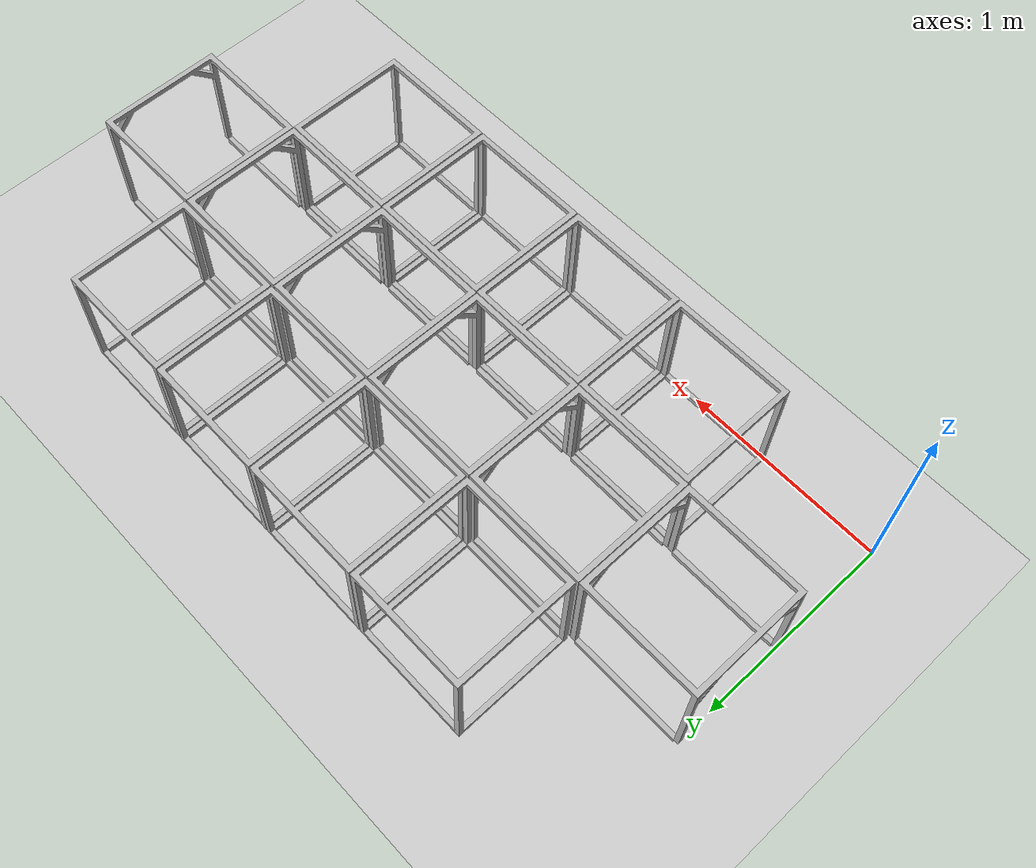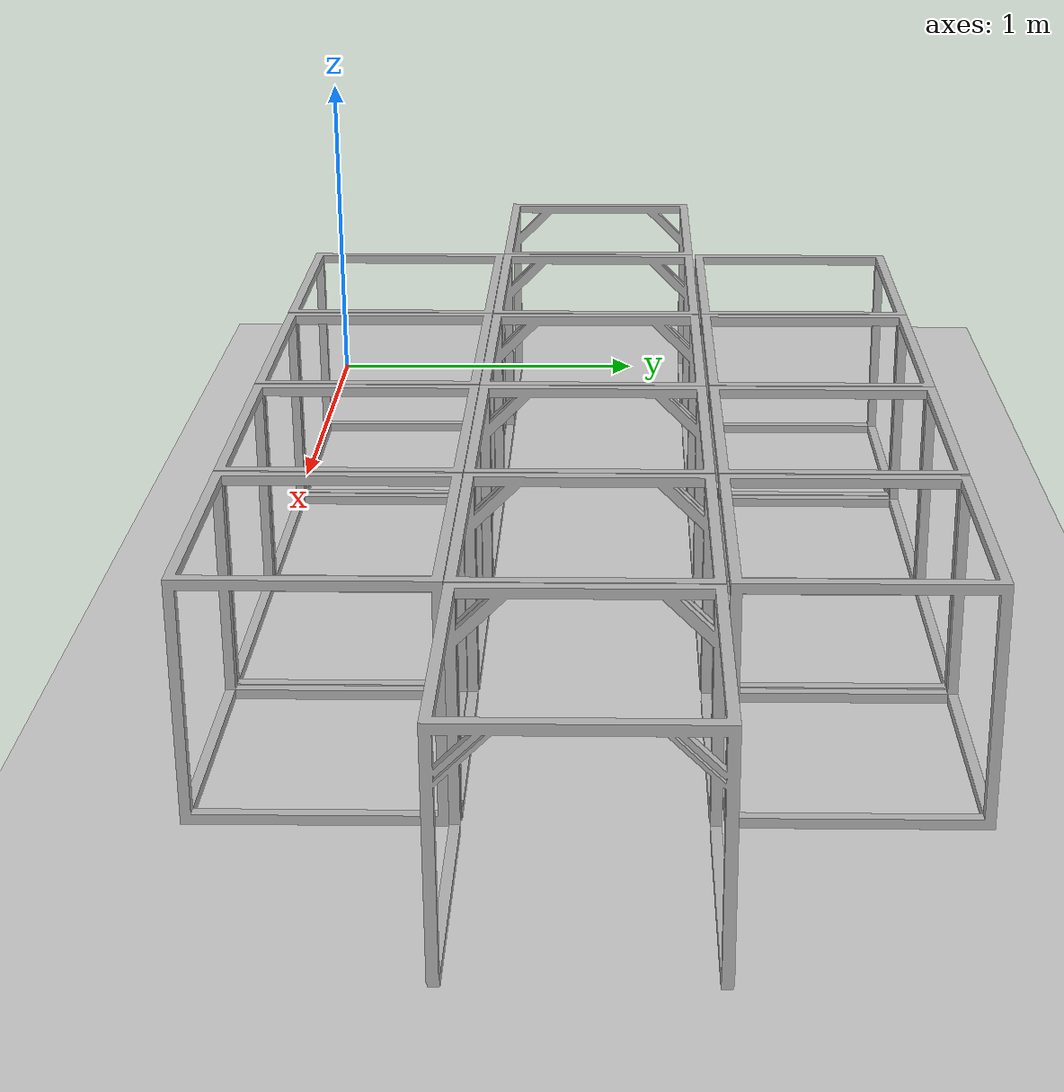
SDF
<sdf version="1.6">
 <world name="default">
  <model name="ground_plane">
   <static>1</static>
   <link name="link">
    <collision name="collision">
     <geometry><plane><normal>0 0 1</normal><size>100 100</size></plane></geometry>
     <surface><friction><ode><mu>100</mu><mu2>50</mu2></ode></friction></surface>
    </collision>
    <visual name="visual">
     <cast_shadows>0</cast_shadows>
     <geometry><plane><normal>0 0 1</normal><size>100 100</size></plane></geometry>
     <material>
      <script><uri>file://media/materials/scripts/gazebo.material</uri><name>Gazebo/Grey</name></script>
     </material>
    </visual>
   </link>
  </model>
  <light name="sun" type="directional">
   <pose>0 0 10 0 -0 0</pose>
   <diffuse>0.8 0.8 0.8 1</diffuse>
   <specular>0.1 0.1 0.1 1</specular>
   <attenuation>
    <range>1000</range>
    <constant>0.9</constant>
    <linear>0.01</linear>
    <quadratic>0.001</quadratic>
   </attenuation>
   <direction>-0.5 0.5 -1</direction>
  </light>
  <model name="cube1">
   <pose>0.6 0 0 0 -0 0</pose>
   <static>1</static>
   <link name="cube1">
    <visual name="visual">
     <geometry><mesh><uri>file://scube.dae</uri><scale>1 1 1</scale></mesh></geometry>
    </visual>
   </link>
  </model>
  <model name="cube2">
   <pose>1.2 0 0 0 -0 0</pose>
   <static>1</static>
   <link name="cube2">
    <visual name="visual">
     <geometry><mesh><uri>file://scube.dae</uri><scale>1 1 1</scale></mesh></geometry>
    </visual>
   </link>
  </model>
  <model name="cube3">
   <pose>1.8 0 0 0 -0 0</pose>
   <static>1</static>
   <link name="cube3">
    <visual name="visual">
     <geometry><mesh><uri>file://scube.dae</uri><scale>1 1 1</scale></mesh></geometry>
    </visual>
   </link>
  </model>
  <model name="cube4">
   <pose>2.4 0 0 0 -0 0</pose>
   <static>1</static>
   <link name="cube4">
    <visual name="visual">
     <geometry><mesh><uri>file://scube.dae</uri><scale>1 1 1</scale></mesh></geometry>
    </visual>
   </link>
  </model>
  <model name="cube5">
   <pose>0.6 1.2 0 0 -0 0</pose>
   <static>1</static>
   <link name="cube5">
    <visual name="visual">
     <geometry><mesh><uri>file://scube.dae</uri><scale>1 1 1</scale></mesh></geometry>
    </visual>
   </link>
  </model>
  <model name="cube6">
   <pose>1.2 1.2 0 0 -0 0</pose>
   <static>1</static>
   <link name="cube6">
    <visual name="visual">
     <geometry><mesh><uri>file://scube.dae</uri><scale>1 1 1</scale></mesh></geometry>
    </visual>
   </link>
  </model>
  <model name="cube7">
   <pose>1.8 1.2 0 0 -0 0</pose>
   <static>1</static>
   <link name="cube7">
    <visual name="visual">
     <geometry><mesh><uri>file://scube.dae</uri><scale>1 1 1</scale></mesh></geometry>
    </visual>
   </link>
  </model>
  <model name="cube8">
   <pose>2.4 1.2 0 0 -0 0</pose>
   <static>1</static>
   <link name="cube8">
    <visual name="visual">
     <geometry><mesh><uri>file://scube.dae</uri><scale>1 1 1</scale></mesh></geometry>
    </visual>
   </link>
  </model>
  <model name="cube9">
   <pose>0 0.6 0 0 -0 0</pose>
   <static>1</static>
   <link name="cube9">
    <visual name="visual">
     <geometry><mesh><uri>file://tcube.dae</uri><scale>1 1 1</scale></mesh></geometry>
    </visual>
   </link>
  </model>
  <model name="cube10">
   <pose>0.6 0.6 0 0 -0 0</pose>
   <static>1</static>
   <link name="cube10">
    <visual name="visual">
     <geometry><mesh><uri>file://tcube.dae</uri><scale>1 1 1</scale></mesh></geometry>
    </visual>
   </link>
  </model>
  <model name="cube11">
   <pose>1.2 0.6 0 0 -0 0</pose>
   <static>1</static>
   <link name="cube11">
    <visual name="visual">
     <geometry><mesh><uri>file://tcube.dae</uri><scale>1 1 1</scale></mesh></geometry>
    </visual>
   </link>
  </model>
  <model name="cube12">
   <pose>1.8 0.6 0 0 -0 0</pose>
   <static>1</static>
   <link name="cube12">
    <visual name="visual">
     <geometry><mesh><uri>file://tcube.dae</uri><scale>1 1 1</scale></mesh></geometry>
    </visual>
   </link>
  </model>
  <model name="cube13">
   <pose>2.4 0.6 0 0 -0 0</pose>
   <static>1</static>
   <link name="cube13">
    <visual name="visual">
     <geometry><mesh><uri>file://tcube.dae</uri><scale>1 1 1</scale></mesh></geometry>
    </visual>
   </link>
  </model>
  <model name="cube14">
   <pose>3 0.6 0 0 -0 0</pose>
   <static>1</static>
   <link name="cube14">
    <visual name="visual">
     <geometry><mesh><uri>file://tcube.dae</uri><scale>1 1 1</scale></mesh></geometry>
    </visual>
   </link>
  </model>
  <gravity>0 0 -9.8</gravity>
  <magnetic_field>6e-06 2.3e-05 -4.2e-05</magnetic_field>
  <atmosphere type="adiabatic"/>
  <physics name="default_physics" default="0" type="ode">
   <max_step_size>0.001</max_step_size>
   <real_time_factor>1</real_time_factor>
   <real_time_update_rate>1000</real_time_update_rate>
  </physics>
  <scene><ambient>0.4 0.4 0.4 1</ambient><background>0.7 0.7 0.7 1</background><shadows>1</shadows></scene>
  <spherical_coordinates>
   <surface_model>EARTH_WGS84</surface_model>
   <latitude_deg>0</latitude_deg>
   <longitude_deg>0</longitude_deg>
   <elevation>0</elevation>
   <heading_deg>0</heading_deg>
  </spherical_coordinates>
 </world>
</sdf>
